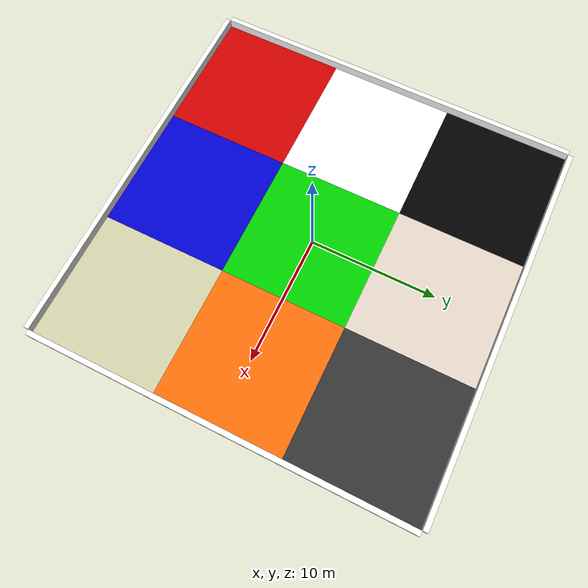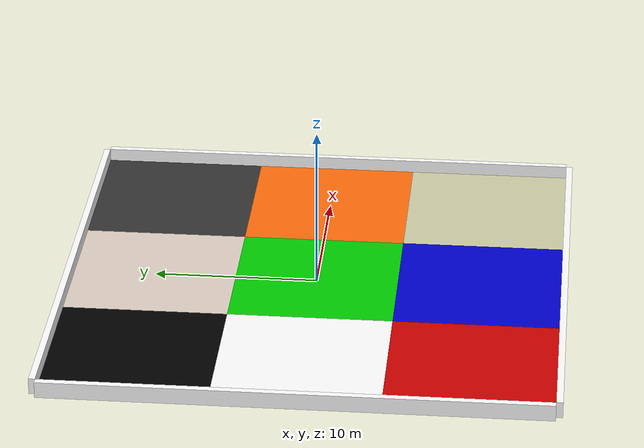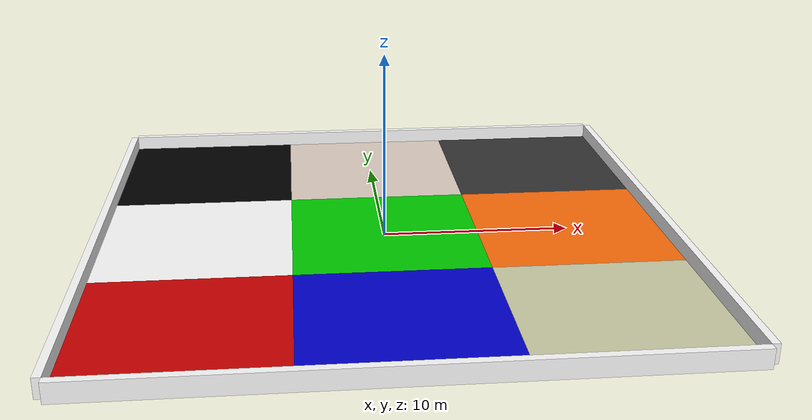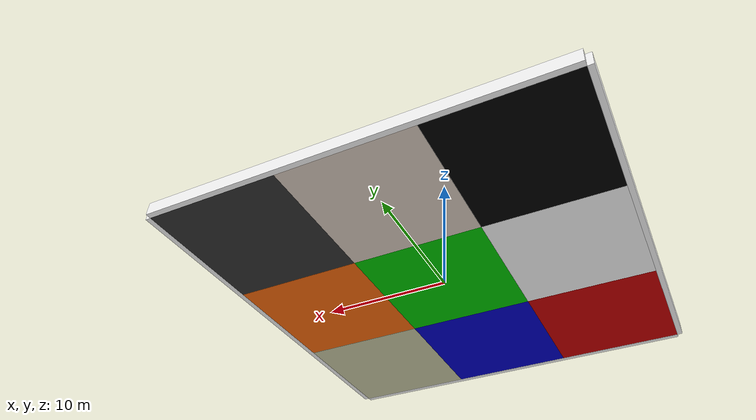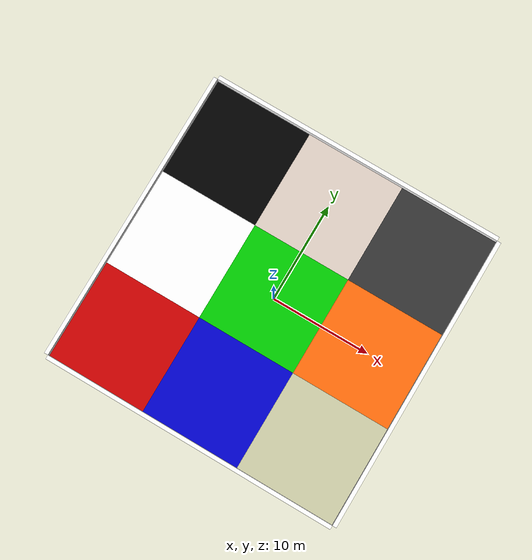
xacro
<?xml version='1.0'?>
<robot xmlns:xacro="http://www.ros.org/wiki/xacro" name="terrain_patches">

	<!--run "rosrun xacro xacro.py terrain_patches.urdf.xacro > terrain_patches.urdf" to copy this .urdf.xacro to a .urdf-->

	<!--general infrastructure loosely follows http://gazebosim.org/tutorials/?tut=ros_urdf for urdf use in Gazebo. -->

	<!--Properties-->
	<xacro:property name="x_width" value="10" /> <!--dimension of blocks in x-->
	<xacro:property name="y_length" value="10" /> <!--dimension of blocks in y-->
	<xacro:property name="z_height" value="0.2"/> <!--dimension of blocks in z-->

	<xacro:property name="wall_width" value="0.4" /> <!--dimension of boundary walls to contain the robot-->
	<xacro:property name="wall_length" value="30" />
	<xacro:property name="wall_height" value="1"/>

	<xacro:property name="body_mass" value="1000" /> <!--arbitrarily large mass-->
	<xacro:property name="inertia_coeff" value="${(1/12)*body_mass}"/>

	<!-- Import Rviz colors -->
	<xacro:include filename="$(find terrain_patches)/media/materials/scripts/materials.xacro" />

	<!-- Import my texture script for Gazebo -->
	<!--xacro:include filename="$(find terrain_patches)/materials/terrain_gazebo.material" /-->

	<!--Macros-->
	<xacro:macro name="default_inertial">
		<inertial>
			<mass value="${body_mass}" />
			<inertia
				ixx="${inertia_coeff*(pow(z_height,2) + pow(y_length,2))}" ixy="0" ixz="0"
				iyy="${inertia_coeff*(pow(z_height,2) + pow(x_width,2))}" iyz="0"
				izz="${inertia_coeff*(pow(x_width,2) + pow(y_length,2))}"/>
		</inertial>
	</xacro:macro>
	<xacro:macro name="fixed_joint_macro" params="xyz name parent child">
		<joint name="${name}" type="prismatic">
			<parent link="${parent}"/>
			<child link="${child}"/>
			<origin rpy="0 0 0" xyz="${xyz}"/>
			<axis xyz="0 0 1"/>
			<limit effort="-1" lower="-0.0001" upper="0.0001" velocity="-1"/>
		</joint>
	</xacro:macro>

	<xacro:macro name="link_macro" params="xyz name color">
		<link name="${name}">
			<xacro:default_inertial />
			<collision>
				<origin rpy="0 0 0" xyz="${xyz}"/>
				<geometry>
					<box size="${x_width} ${y_length} ${z_height}" />
				</geometry>
			</collision>
			<visual>
				<origin rpy="0 0 0" xyz="${xyz}"/>
				<geometry>
					<box size="${x_width} ${y_length} ${z_height}" />
				</geometry>
				<material name="${color}"/>
			</visual>

		</link>
	</xacro:macro>
	<xacro:macro name="block_macro" params="name name2 xyz xyz2 parent child color">
		<xacro:link_macro name="${name}" xyz="${xyz}" color="${color}"/>

		<xacro:fixed_joint_macro
				name="${name2}" xyz="${xyz2}"
				parent="${parent}" child="${child}"/>
	</xacro:macro>
	<xacro:macro name="barrier_macro" params="xyz xyz2 name name2 parent child rpy">
		<link name="${name}">
			<xacro:default_inertial />
			<collision>
				<origin rpy="${rpy}" xyz="${xyz}"/>
				<geometry>
					<box size="${wall_width} ${wall_length} ${wall_height}" />
				</geometry>
			</collision>
			<visual>
				<origin rpy="${rpy}" xyz="${xyz}"/>
				<geometry>
					<box size="${wall_width} ${wall_length} ${wall_height}" />
				</geometry>
				<material name="white"/>
			</visual>
		</link>
		<xacro:fixed_joint_macro
				name="${name2}" xyz="${xyz2}"
				parent="${parent}" child="${child}"/>
	</xacro:macro>

	<!--Construction of blocks-->
	<link name="world"/>
	<joint name="world_to_block_0" type="fixed">
		<parent link="world"/>
		<child link="block_0"/>
	</joint>

	<!-- block_0 -->
	<xacro:link_macro
				name="block_0" xyz="0 0 ${z_height/2}"
				color="green"/>
	<!-- block_1 -->
	<xacro:block_macro
				name="block_1" xyz="${x_width/2} 0 ${z_height/2}"
				name2="block_1_joint" xyz2="${(1/2)*x_width} 0 0"
				parent="block_0" child="block_1"
				color="orange"/>
	<!-- block_2 -->
	<xacro:block_macro
				name="block_2" xyz="${x_width/2} ${y_length/2} ${z_height/2}"
				name2="block_2_joint" xyz2="0 ${(1/2)*y_length} 0"
				parent="block_1" child="block_2"
				color="grey"/>
	<!-- block_3 -->
	<xacro:block_macro
				name="block_3" xyz="0 ${y_length/2} ${z_height/2}"
				name2="block_3_joint" xyz2="${(-1/2)*x_width} 0 0"
				parent="block_2" child="block_3"
				color="brown"/>
	<!-- block_4 -->
	<xacro:block_macro
				name="block_4" xyz="${-x_width/2} ${y_length/2} ${z_height/2}"
				name2="block_4_joint" xyz2="${(-1/2)*x_width} 0 0"
				parent="block_3" child="block_4"
				color="black"/>
	<!-- block_5 -->
	<xacro:block_macro
				name="block_5" xyz="${-x_width/2} 0 ${z_height/2}"
				name2="block_5_joint" xyz2="0 ${(-1/2)*y_length} 0"
				parent="block_4" child="block_5"
				color="white"/>
	<!-- block_6 -->
	<xacro:block_macro
				name="block_6" xyz="${-x_width/2} ${-y_length/2} ${z_height/2}"
				name2="block_6_joint" xyz2="0 ${(-1/2)*y_length} 0"
				parent="block_5" child="block_6"
				color="red"/>
	<!-- block_7 -->
	<xacro:block_macro
				name="block_7" xyz="0 ${-y_length/2} ${z_height/2}"
				name2="block_7_joint" xyz2="${(1/2)*x_width} 0 0"
				parent="block_6" child="block_7"
				color="blue"/>
	<!-- Block8 -->
	<xacro:block_macro
				name="block_8" xyz="${x_width/2} ${-y_length/2} ${z_height/2}"
				name2="block_8_joint" xyz2="${(1/2)*x_width} 0 0"
				parent="block_7" child="block_8"
				color="tan"/>

	<!--BarrierWall0-->
	<xacro:barrier_macro
				name="wall_0" name2="wall_0_joint"
				xyz="${wall_width/2} ${wall_length/2} ${wall_height/2}" xyz2="${x_width} ${-y_length} 0"
				rpy="0 0 0" parent="block_8" child="wall_0"/>

	<!--BarrierWall1-->
	<xacro:barrier_macro
				name="wall_1" name2="wall_1_joint"
				xyz="${-wall_length/2} ${wall_width/2} ${wall_height/2}" xyz2="0 ${wall_length} 0"
				rpy="0 0 ${3.141592/2}" parent="wall_0" child="wall_1"/>

	<!--BarrierWall2-->
	<xacro:barrier_macro
				name="wall_2" name2="wall_2_joint"
				xyz="${-wall_width/2} ${-wall_length/2} ${wall_height/2}" xyz2="${-wall_length} 0 0"
				rpy="0 0 3.141592" parent="wall_1" child="wall_2"/>

	<!--BarrierWall3-->
	<xacro:barrier_macro
				name="wall_3" name2="wall_3_joint"
				xyz="${wall_length/2} ${-wall_width/2} ${wall_height/2}" xyz2="0 ${-wall_length} 0"
				rpy="0 0 ${(1/2)*3.141592}" parent="wall_2" child="wall_3"/>

	<!-- Specifying Gazebo Colors -->
	<!-- block_0-->
	<gazebo reference="block_0">
		<material>Dirt</material> <!--Dirt is a custom texture type specified in the media folder.-->
		<collision>
			<surface>
				<friction>
					<ode>
						<mu>0.6</mu>
						<mu2>0.6</mu2>
						<fdir1></fdir1>
						<slip1>0</slip1>
						<slip2>0</slip2>
					</ode>
				</friction>
			</surface>
		</collision>
	</gazebo>

	<!-- block_1 -->
	<gazebo reference="block_1">
		<material>Dirt</material>
		<collision>
			<surface>
				<friction>
					<ode>
						<mu>0.6</mu>
						<mu2>0.6</mu2>
						<fdir1></fdir1>
						<slip1>0</slip1>
						<slip2>0</slip2>
					</ode>
				</friction>
			</surface>
		</collision>
	</gazebo>

	<!-- block_2 -->
	<gazebo reference="block_2">
		<material>Gravel</material>
		<collision>
			<surface>
				<friction>
					<ode>
						<mu>0.6</mu>
						<mu2>0.6</mu2>
						<fdir1></fdir1>
						<slip1>0</slip1>
						<slip2>0</slip2>
					</ode>
				</friction>
			</surface>
		</collision>
	</gazebo>

	<!-- block_3 -->
	<gazebo reference="block_3">
		<material>Mud</material>
		<collision>
			<surface>
				<friction>
					<ode>
						<mu>0.6</mu>
						<mu2>0.6</mu2>
						<fdir1></fdir1>
						<slip1>0</slip1>
						<slip2>0</slip2>
					</ode>
				</friction>
			</surface>
		</collision>
	</gazebo>

	<!-- block_4 -->
	<gazebo reference="block_4">
		<material>Red_Sand</material>
		<collision>
			<surface>
				<friction>
					<ode>
						<mu>0.6</mu>
						<mu2>0.6</mu2>
						<fdir1></fdir1>
						<slip1>0</slip1>
						<slip2>0</slip2>
					</ode>
				</friction>
			</surface>
		</collision>
	</gazebo>

	<!-- block_5 -->
	<gazebo reference="block_5">
		<material>Dirt</material>
		<collision>
			<surface>
				<friction>
					<ode>
						<mu>0.6</mu>
						<mu2>0.6</mu2>
						<fdir1></fdir1>
						<slip1>0</slip1>
						<slip2>0</slip2>
					</ode>
				</friction>
			</surface>
		</collision>
	</gazebo>

	<!-- block_6 -->
	<gazebo reference="block_6">
		<material>Sand</material>
		<collision>
			<surface>
				<friction>
					<ode>
						<mu>0.1</mu>
						<mu2>0.1</mu2>
						<fdir1></fdir1>
						<slip1>0.0001</slip1>
						<slip2>0.0001</slip2>
					</ode>
				</friction>
			</surface>
		</collision>
	</gazebo>

	<!-- block_7 -->
	<gazebo reference="block_7">
		<material>Sand</material>
		<collision>
			<surface>
				<friction>
					<ode>
						<mu>0.1</mu>
						<mu2>0.1</mu2>
						<fdir1></fdir1>
						<slip1>0.0001</slip1>
						<slip2>0.0001</slip2>
					</ode>
				</friction>
			</surface>
		</collision>
	</gazebo>

	<!-- Block8 -->
	<gazebo reference="block_8">
		<material>Dirt</material>
		<collision>
			<surface>
				<friction>
					<ode>
						<mu>0.6</mu>
						<mu2>0.6</mu2>
						<fdir1></fdir1>
						<slip1>0</slip1>
						<slip2>0</slip2>
					</ode>
				</friction>
			</surface>
		</collision>
	</gazebo>

	<!--BarrierWall1-->
	<gazebo reference="wall_0">
		<material>Wall</material>
	</gazebo>

	<!--BarrierWall2-->
	<gazebo reference="wall_1">
		<material>Wall</material>
	</gazebo>

	<!--BarrierWall3-->
	<gazebo reference="wall_2">
		<material>Wall</material>
	</gazebo>

	<!--BarrierWall4-->
	<gazebo reference="wall_3">
		<material>Wall</material>
	</gazebo>

</robot>

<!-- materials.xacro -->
<!--Colors used by RVIZ-->
<robot>

  <material name="black">
    <color rgba="0.0 0.0 0.0 1.0"/>
  </material>

  <material name="blue">
    <color rgba="0.0 0.0 0.8 1.0"/>
  </material>

  <material name="green">
    <color rgba="0.0 0.8 0.0 1.0"/>
  </material>

  <material name="tan">
  	<color rgba="0.8 0.8 0.65 1.0"/>
  </material>

  <material name="grey">
    <color rgba="0.2 0.2 0.2 1.0"/>
  </material>

  <material name="orange">
    <color rgba="${255/255} ${108/255} ${10/255} 1.0"/>
  </material>

  <material name="brown">
    <color rgba="${222/255} ${207/255} ${195/255} 1.0"/>
  </material>

  <material name="red">
    <color rgba="0.8 0.0 0.0 1.0"/>
  </material>

  <material name="white">
    <color rgba="1.0 1.0 1.0 1.0"/>
  </material>

  <material name="silver">
	<color rgba="0.75 0.75 0.75 1"/>
  </material>

  <material name="dark_silver">
	<color rgba="0.4 0.4 0.4 1"/>
  </material>

  <material name="gold">
    <color rgba="0.9 0.7 0.1 1"/>
  </material>

</robot>
